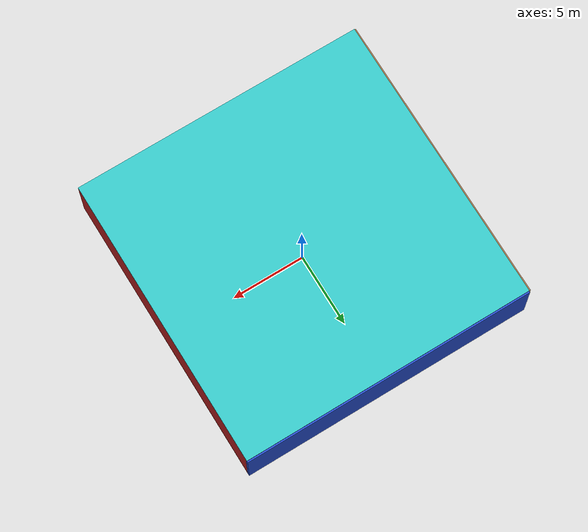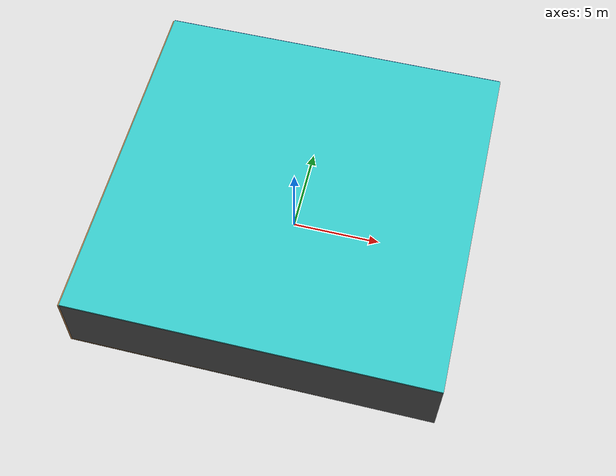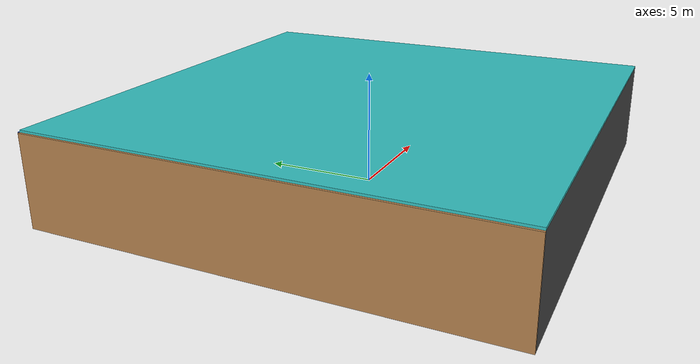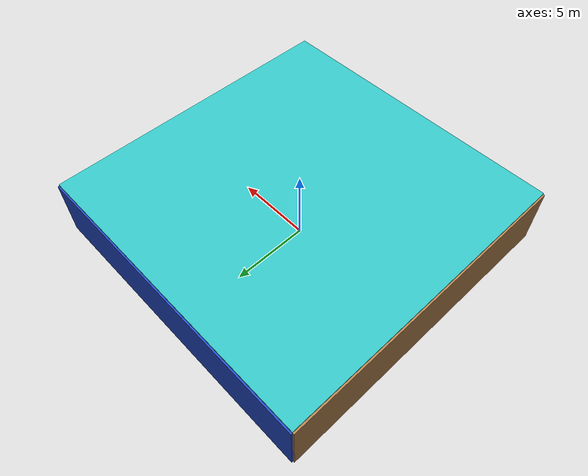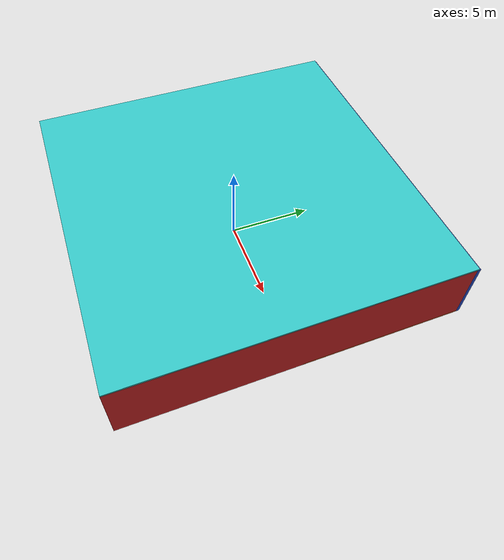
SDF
<sdf version="1.4">
 <world name="default">
  <physics type="ode">
   <max_step_size>0.001</max_step_size>
   <real_time_factor>1</real_time_factor>
   <real_time_update_rate>1000</real_time_update_rate>
   <gravity>0 0 -9.8</gravity>
  </physics>
  <scene><ambient>0.4 0.4 0.4 1</ambient><background>0.7 0.7 0.7 1</background><shadows>1</shadows></scene>
  <model name="Surrounding">
   <static>1</static>
   <link name="Ceiling">
    <collision name="Ceiling_Collision"><geometry><box><size>20 20 0.1</size></box></geometry></collision>
    <visual name="Ceiling_Visual">
     <geometry><box><size>20 20 0.1</size></box></geometry>
     <material>
      <script><uri>file://media/materials/scripts/gazebo.material</uri><name>Gazebo/Turquoise</name></script>
     </material>
    </visual>
    <pose>0 0 4.05 0 0 0</pose>
   </link>
   <link name="Wall_South">
    <collision name="Wall_South_Collision">
     <geometry><box><size>20 0 4</size></box></geometry>
     <pose>0 0 2 0 -0 0</pose>
    </collision>
    <visual name="Wall_South_Visual">
     <pose>0 0 2 0 -0 0</pose>
     <geometry><box><size>20 0 4</size></box></geometry>
     <material>
      <script><uri>file://media/materials/scripts/gazebo.material</uri><name>Gazebo/DarkGrey</name></script>
     </material>
    </visual>
    <velocity_decay><linear>0</linear><angular>0</angular></velocity_decay>
    <pose>0 -10 0 0 -0 0</pose>
   </link>
   <link name="Wall_East">
    <collision name="Wall_21_Collision">
     <geometry><box><size>20 0 4</size></box></geometry>
     <pose>0 0 2 0 -0 0</pose>
    </collision>
    <visual name="Wall_21_Visual">
     <pose>0 0 2 0 -0 0</pose>
     <geometry><box><size>20 0 4</size></box></geometry>
     <material>
      <script><uri>file://media/materials/scripts/gazebo.material</uri><name>Gazebo/RedGlow</name></script>
     </material>
    </visual>
    <velocity_decay><linear>0</linear><angular>0</angular></velocity_decay>
    <pose>10 0 0 0 -0 1.5708</pose>
   </link>
   <link name="Wall_North">
    <collision name="Wall_22_Collision">
     <geometry><box><size>20 0.2 4</size></box></geometry>
     <pose>0 0 2 0 -0 0</pose>
    </collision>
    <visual name="Wall_22_Visual">
     <pose>0 0 2 0 -0 0</pose>
     <geometry><box><size>20 0.2 4</size></box></geometry>
     <material>
      <script><uri>file://media/materials/scripts/gazebo.material</uri><name>Gazebo/BlueLaser</name></script>
     </material>
    </visual>
    <velocity_decay><linear>0</linear><angular>0</angular></velocity_decay>
    <pose>0 10 0 0 -0 0</pose>
   </link>
   <link name="Wall_West">
    <collision name="Wall_23_Collision">
     <geometry><box><size>20 0.2 4</size></box></geometry>
     <pose>0 0 2 0 -0 0</pose>
    </collision>
    <visual name="Wall_23_Visual">
     <pose>0 0 2 0 -0 0</pose>
     <geometry><box><size>20 0.2 4</size></box></geometry>
     <material>
      <script><uri>file://media/materials/scripts/gazebo.material</uri><name>Gazebo/WoodPallet</name></script>
     </material>
    </visual>
    <velocity_decay><linear>0</linear><angular>0</angular></velocity_decay>
    <pose>-10 0 0 0 0 -1.5708</pose>
   </link>
   <link name="Ground_link">
    <collision name="collision">
     <pose>0 0 .05 0 -0 0</pose>
     <geometry><box><size>20 20 0.1</size></box></geometry>
    </collision>
    <visual name="visual">
     <pose>0 0 .05 0 -0 0</pose>
     <geometry><box><size>20 20 0.1</size></box></geometry>
     <material>
      <script>
       <uri>file://media/materials/scripts/gazebo.material</uri>
       <name>Gazebo/OrangeTransparent</name>
      </script>
     </material>
    </visual>
   </link>
   <static>1</static>
  </model>
  <spherical_coordinates>
   <surface_model>EARTH_WGS84</surface_model>
   <latitude_deg>0</latitude_deg>
   <longitude_deg>0</longitude_deg>
   <elevation>0</elevation>
   <heading_deg>0</heading_deg>
  </spherical_coordinates>
  <light name="lightball_0" type="diffuse">
   <diffuse>0.8 0.8 0.8 1</diffuse>
   <specular>0.2 0.2 0.2 1</specular>
   <attenuation>
    <range>100</range>
    <constant>0.7</constant>
    <linear>0.01</linear>
    <quadratic>0.001</quadratic>
   </attenuation>
   <direction>-0.5 0.1 -0.9</direction>
   <pose>-6.33101383567 -5.61573994613 1.47284316234 0 0 0</pose>
  </light>
  <light name="lightball_1" type="diffuse">
   <diffuse>0.8 0.8 0.8 1</diffuse>
   <specular>0.2 0.2 0.2 1</specular>
   <attenuation>
    <range>100</range>
    <constant>0.7</constant>
    <linear>0.01</linear>
    <quadratic>0.001</quadratic>
   </attenuation>
   <direction>-0.5 0.1 -0.9</direction>
   <pose>-6.25967080113 -9.71872803734 3.76473688011 0 0 0</pose>
  </light>
  <light name="lightball_2" type="diffuse">
   <diffuse>0.8 0.8 0.8 1</diffuse>
   <specular>0.2 0.2 0.2 1</specular>
   <attenuation>
    <range>100</range>
    <constant>0.7</constant>
    <linear>0.01</linear>
    <quadratic>0.001</quadratic>
   </attenuation>
   <direction>-0.5 0.1 -0.9</direction>
   <pose>-9.01890760208 6.64061909089 1.41619664288 0 0 0</pose>
  </light>
  <light name="lightball_3" type="diffuse">
   <diffuse>0.8 0.8 0.8 1</diffuse>
   <specular>0.2 0.2 0.2 1</specular>
   <attenuation>
    <range>100</range>
    <constant>0.7</constant>
    <linear>0.01</linear>
    <quadratic>0.001</quadratic>
   </attenuation>
   <direction>-0.5 0.1 -0.9</direction>
   <pose>-5.44367496391 -2.08141178323 2.78394902832 0 0 0</pose>
  </light>
  <include>
   <uri>model://construction_cone</uri>
   <pose>-8.16292593795 4.38353216139 0 0 0 2.27564865455</pose>
  </include>
  <include>
   <uri>model://textured_shapes</uri>
   <pose>-1.95877394907 -6.79090086032 0 0 0 2.40784802597</pose>
  </include>
  <include><uri>model://cabinet</uri><pose>-2.1668559423 2.2338030231 0 0 0 0.742005562126</pose></include>
  <include>
   <uri>model://textured_shapes</uri>
   <pose>1.02627699525 1.0031979748 0 0 0 0.821622126246</pose>
  </include>
  <include><uri>model://cabinet</uri><pose>7.43075999528 -8.0197263452 0 0 0 2.91893458957</pose></include>
  <include><uri>model://cabinet</uri><pose>7.34235719463 7.0589225658 0 0 0 0.612835615755</pose></include>
 </world>
</sdf>

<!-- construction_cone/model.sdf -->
<sdf version="1.5">
  <model name="Construction Cone">
    <link name="link">
      <collision name="collision">
        <geometry>
          <mesh>
            <scale>10 10 10</scale>
            <uri>file://isr-testbed/construction_cone/meshes/construction_cone.dae</uri>
          </mesh>
        </geometry>
      </collision>
      <visual name="visual">
        <geometry>
          <mesh>
            <scale>10 10 10</scale>
            <uri>file://isr-testbed/construction_cone/meshes/construction_cone.dae</uri>
          </mesh>
        </geometry>
      </visual>
    </link>
  </model>
</sdf>

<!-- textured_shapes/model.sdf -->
<sdf version="1.6">
  <model name="textured_shapes">
    <pose>0 0 0.5 0 0 0</pose>
    <link name="box">
      <pose>0 -1.5 0 0 0 0</pose>
      <collision name="collision">
        <geometry>
          <box>
            <size>1 1 1</size>
          </box>
        </geometry>
      </collision>
      <visual name="visual">
        <geometry>
          <box>
            <size>1 1 1</size>
          </box>
        </geometry>
        <material>
          <script>
            <uri>model://../model_source/models/textured_shapes/materials/scripts</uri>
            <uri>model://../model_source/models/textured_shapes/materials/textures</uri>
            <name>TexturedShape/Squares</name>
          </script>
        </material>
      </visual>
    </link>
    <link name="sphere">
      <collision name="collision">
        <geometry>
          <sphere>
            <radius>0.5</radius>
          </sphere>
        </geometry>
      </collision>
      <visual name="visual">
        <geometry>
          <sphere>
            <radius>0.5</radius>
          </sphere>
        </geometry>
        <material>
          <script>
            <uri>model://../model_source/models/textured_shapes/materials/scripts</uri>
            <uri>model://../model_source/models/textured_shapes/materials/textures</uri>
            <name>TexturedShape/Squares</name>
          </script>
        </material>
      </visual>
    </link>
    <link name="cylinder">
      <pose>0 1.5 0 0 0 0</pose>
      <collision name="collision">
        <geometry>
          <cylinder>
            <radius>0.5</radius>
            <length>1</length>
          </cylinder>
        </geometry>
      </collision>
      <visual name="visual">
        <geometry>
          <cylinder>
            <radius>0.5</radius>
            <length>1</length>
          </cylinder>
        </geometry>
        <material>
          <script>
            <uri>model://../model_source/models/textured_shapes/materials/scripts</uri>
            <uri>model://../model_source/models/textured_shapes/materials/textures</uri>
            <name>TexturedShape/Squares</name>
          </script>
        </material>
      </visual>
    </link>
  </model>
</sdf>

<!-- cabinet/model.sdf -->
<sdf version="1.5">
  <model name="cabinet">
    <static>true</static>
    <link name="cabinet_bottom_plate">
      <inertial>
        <pose>0 0 -1 0 0 0</pose>
        <inertia>
          <ixx>2.050000</ixx>
          <ixy>0</ixy>
          <ixz>0</ixz>
          <iyy>2.050000</iyy>
          <iyz>0</iyz>
          <izz>2.050000</izz>
        </inertia>
        <mass>25.000000</mass>
      </inertial>
      <collision name="cabinet_bottom_plate_geom">
        <pose>0 0 0.010000 0 0 0</pose>
        <geometry>
          <box>
            <size>0.450000 0.450000 0.020000</size>
          </box>
        </geometry>
      </collision>
      <visual name="cabinet_bottom_plate_geom_visual">
        <pose>0 0 0.010000 0 0 0</pose>
        <geometry>
          <box>
            <size>0.450000 0.450000 0.020000</size>
          </box>
        </geometry>
        <material>
          <script>
            <uri>model://media/materials/scripts/gazebo.material</uri>
            <name>Gazebo/Wood</name>
          </script>
        </material>
      </visual>
      <collision name="cabinet_bottom_plate_geom_cabinet_back_plate">
        <pose>0.235000 0 0.510000 0 0 0</pose>
        <geometry>
          <box>
            <size>0.020000 0.450000 1.020000</size>
          </box>
        </geometry>
      </collision>
      <visual name="cabinet_bottom_plate_geom_cabinet_back_plate_visual">
        <pose>0.235000 0 0.510000 0 0 0</pose>
        <geometry>
          <box>
            <size>0.020000 0.450000 1.020000</size>
          </box>
        </geometry>
        <material>
          <script>
            <uri>model://media/materials/scripts/gazebo.material</uri>
            <name>Gazebo/Wood</name>
          </script>
        </material>
      </visual>
      <collision name="cabinet_bottom_plate_geom_cabinet_left_plate">
        <pose>0 0.235000 0.510000 0 0 0</pose>
        <geometry>
          <box>
            <size>0.450000 0.020000 1.020000</size>
          </box>
        </geometry>
      </collision>
      <visual name="cabinet_bottom_plate_geom_cabinet_left_plate_visual">
        <pose>0 0.235000 0.510000 0 0 0</pose>
        <geometry>
          <box>
            <size>0.450000 0.020000 1.020000</size>
          </box>
        </geometry>
        <material>
          <script>
            <uri>model://media/materials/scripts/gazebo.material</uri>
            <name>Gazebo/Wood</name>
          </script>
        </material>
      </visual>
      <collision name="cabinet_bottom_plate_geom_cabinet_middle_plate">
        <pose>0 0 0.510000 0 0 0</pose>
        <geometry>
          <box>
            <size>0.450000 0.450000 0.020000</size>
          </box>
        </geometry>
      </collision>
      <visual name="cabinet_bottom_plate_geom_cabinet_middle_plate_visual">
        <pose>0 0 0.510000 0 0 0</pose>
        <geometry>
          <box>
            <size>0.450000 0.450000 0.020000</size>
          </box>
        </geometry>
        <material>
          <script>
            <uri>model://media/materials/scripts/gazebo.material</uri>
            <name>Gazebo/Wood</name>
          </script>
        </material>
      </visual>
      <collision name="cabinet_bottom_plate_geom_cabinet_right_plate">
        <pose>0 -0.235000 0.510000 0 0 0</pose>
        <geometry>
          <box>
            <size>0.450000 0.020000 1.020000</size>
          </box>
        </geometry>
      </collision>
      <visual name="cabinet_bottom_plate_geom_cabinet_right_plate_visual">
        <pose>0 -0.235000 0.510000 0 0 0</pose>
        <geometry>
          <box>
            <size>0.450000 0.020000 1.020000</size>
          </box>
        </geometry>
        <material>
          <script>
            <uri>model://media/materials/scripts/gazebo.material</uri>
            <name>Gazebo/Wood</name>
          </script>
        </material>
      </visual>
      <collision name="cabinet_bottom_plate_geom_cabinet_top_plate">
        <pose>0 0 1.010000 0 0 0</pose>
        <geometry>
          <box>
            <size>0.450000 0.450000 0.020000</size>
          </box>
        </geometry>
      </collision>
      <visual name="cabinet_bottom_plate_geom_cabinet_top_plate_visual">
        <pose>0 0 1.010000 0 0 0</pose>
        <geometry>
          <box>
            <size>0.450000 0.450000 0.020000</size>
          </box>
        </geometry>
        <material>
          <script>
            <uri>model://media/materials/scripts/gazebo.material</uri>
            <name>Gazebo/Wood</name>
          </script>
        </material>
      </visual>
    </link>
  </model>
</sdf>
